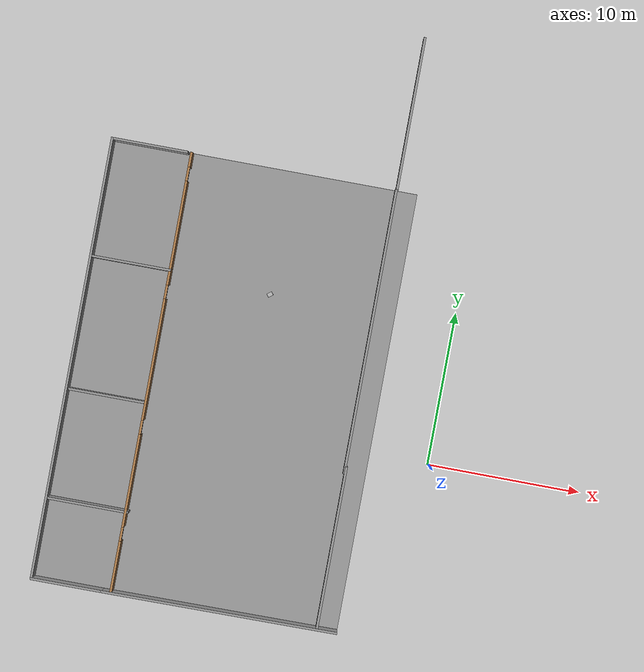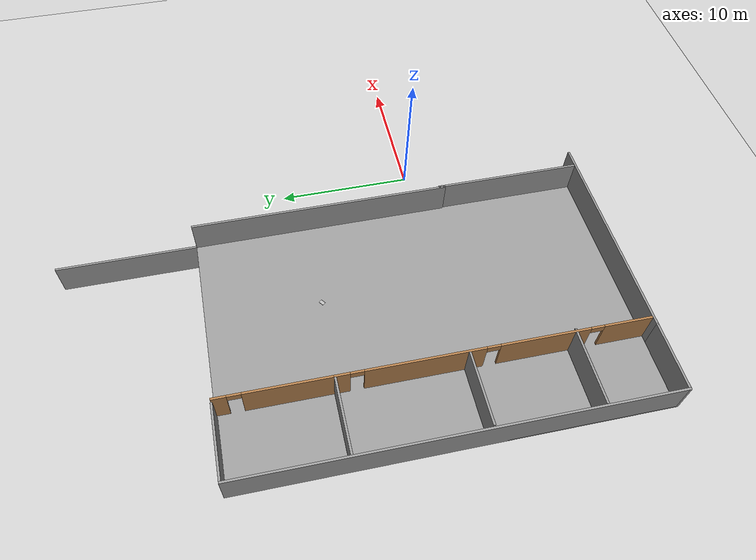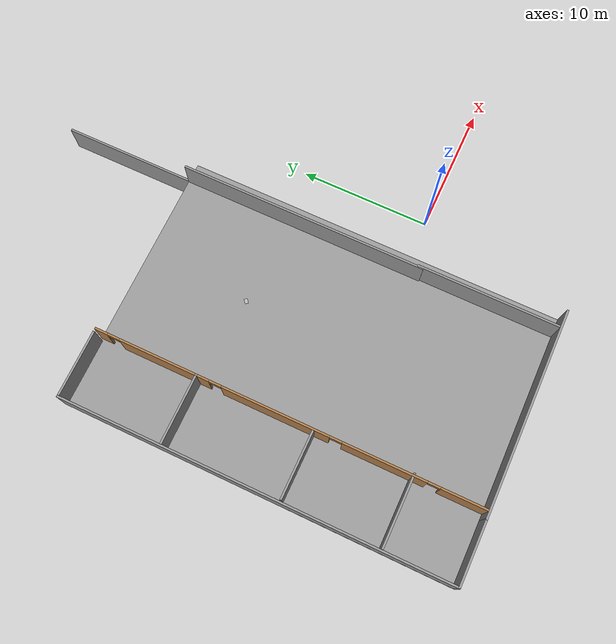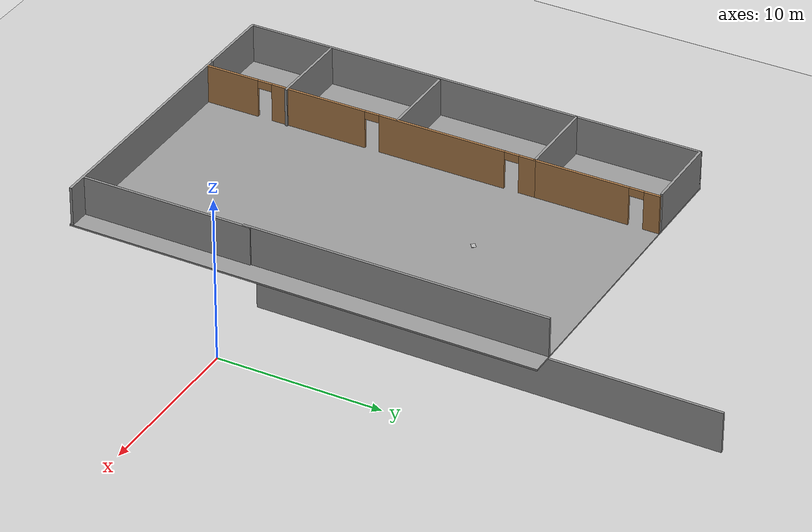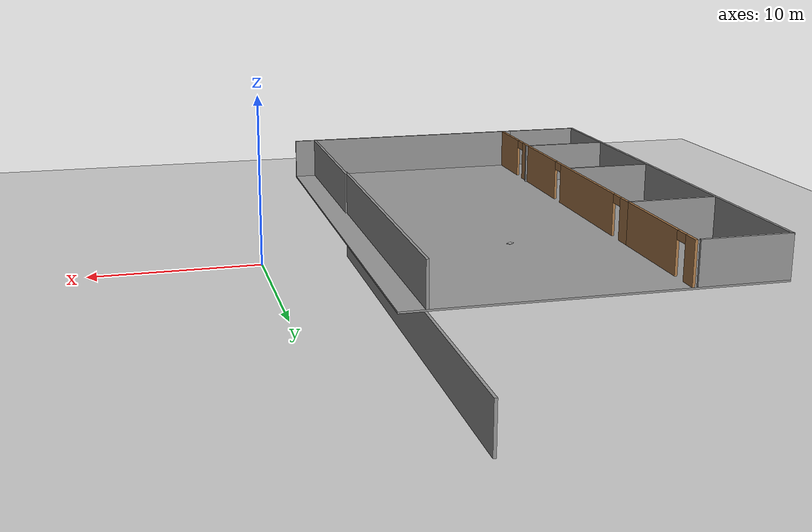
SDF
<sdf version="1.5">
 <world name="default">
  <model name="ground_plane">
   <static>1</static>
   <link name="link">
    <collision name="collision">
     <geometry><plane><normal>0 0 1</normal><size>100 100</size></plane></geometry>
     <surface>
      <contact><collide_bitmask>65535</collide_bitmask></contact>
      <friction><ode><mu>100</mu><mu2>50</mu2></ode></friction>
     </surface>
    </collision>
    <visual name="visual">
     <cast_shadows>0</cast_shadows>
     <geometry><plane><normal>0 0 1</normal><size>100 100</size></plane></geometry>
     <material>
      <script><uri>file://media/materials/scripts/gazebo.material</uri><name>Gazebo/Grey</name></script>
     </material>
    </visual>
   </link>
  </model>
  <model name="second_add">
   <pose>-13.8882 7.9927 0 0 -0 0</pose>
   <link name="Floor_1">
    <collision name="Floor_1_Collision">
     <geometry><box><size>19.9273 28.7505 0.1</size></box></geometry>
     <pose>0 0 0.05 0 -0 0</pose>
    </collision>
    <visual name="Floor_1_Visual">
     <pose>0 0 0.05 0 -0 0</pose>
     <geometry><box><size>19.9273 28.7505 0.1</size></box></geometry>
     <material>
      <script><uri>file://media/materials/scripts/gazebo.material</uri><name>Gazebo/Grey</name></script>
      <ambient>1 1 1 1</ambient>
     </material>
     <meta><layer>1</layer></meta>
    </visual>
    <pose>1e-06 -5.29758 2.5 0 -0 0</pose>
   </link>
   <link name="Wall_17">
    <collision name="Wall_17_Collision">
     <geometry><box><size>15.3272 0.15 2.5</size></box></geometry>
     <pose>0 0 1.25 0 -0 0</pose>
    </collision>
    <visual name="Wall_17_Visual">
     <pose>0 0 1.25 0 -0 0</pose>
     <geometry><box><size>15.3272 0.15 2.5</size></box></geometry>
     <material>
      <script><uri>file://media/materials/scripts/gazebo.material</uri><name>Gazebo/Grey</name></script>
      <ambient>1 1 1 1</ambient>
     </material>
     <meta><layer>1</layer></meta>
    </visual>
    <pose>2.29977 -19.55 2.5 0 -0 0.006236</pose>
   </link>
   <link name="Wall_18">
    <collision name="Wall_18_Collision">
     <geometry><box><size>10.5 0.15 2.5</size></box></geometry>
     <pose>0 0 1.25 0 -0 0</pose>
    </collision>
    <visual name="Wall_18_Visual">
     <pose>0 0 1.25 0 -0 0</pose>
     <geometry><box><size>10.5 0.15 2.5</size></box></geometry>
     <material>
      <script><uri>file://media/materials/scripts/gazebo.material</uri><name>Gazebo/Grey</name></script>
      <ambient>1 1 1 1</ambient>
     </material>
     <meta><layer>1</layer></meta>
    </visual>
    <pose>8.6382 -14.1777 2.5 0 -0 -1.5708</pose>
   </link>
   <link name="Wall_2">
    <collision name="Wall_2_Collision">
     <geometry><box><size>28.75 0.15 2.5</size></box></geometry>
     <pose>0 0 1.25 0 -0 0</pose>
    </collision>
    <visual name="Wall_2_Visual">
     <pose>0 0 1.25 0 -0 0</pose>
     <geometry><box><size>27.75 0.15 2.5</size></box></geometry>
     <material>
      <script><uri>file://media/materials/scripts/gazebo.material</uri><name>Gazebo/Grey</name></script>
      <ambient>1 1 1 1</ambient>
     </material>
     <meta><layer>0</layer></meta>
    </visual>
    <pose>8.6382 5.2973 0 0 -0 1.5708</pose>
   </link>
   <link name="Wall_20">
    <collision name="Wall_20_Collision">
     <geometry><box><size>4.75 0.15 2.5</size></box></geometry>
     <pose>0 0 1.25 0 -0 0</pose>
    </collision>
    <visual name="Wall_20_Visual">
     <pose>0 0 1.25 0 -0 0</pose>
     <geometry><box><size>4.75 0.15 2.5</size></box></geometry>
     <material>
      <script><uri>file://media/materials/scripts/gazebo.material</uri><name>Gazebo/Grey</name></script>
      <ambient>1 1 1 1</ambient>
     </material>
     <meta><layer>1</layer></meta>
    </visual>
    <pose>-7.58866 -19.5973 2.5 0 -0 3.14159</pose>
   </link>
   <link name="Wall_21">
    <collision name="Wall_21_Collision">
     <geometry><box><size>28.75 0.15 2.5</size></box></geometry>
     <pose>0 0 1.25 0 -0 0</pose>
    </collision>
    <visual name="Wall_21_Visual">
     <pose>0 0 1.25 0 -0 0</pose>
     <geometry><box><size>28.75 0.15 2.5</size></box></geometry>
     <material>
      <script><uri>file://media/materials/scripts/gazebo.material</uri><name>Gazebo/Grey</name></script>
      <ambient>1 1 1 1</ambient>
     </material>
     <meta><layer>1</layer></meta>
    </visual>
    <pose>-9.88866 -5.29734 2.5 0 -0 1.5708</pose>
   </link>
   <link name="Wall_22">
    <collision name="Wall_22_Collision">
     <geometry><box><size>5 0.15 2.5</size></box></geometry>
     <pose>0 0 1.25 0 -0 0</pose>
    </collision>
    <visual name="Wall_22_Visual">
     <pose>0 0 1.25 0 -0 0</pose>
     <geometry><box><size>5 0.15 2.5</size></box></geometry>
     <material>
      <script><uri>file://media/materials/scripts/gazebo.material</uri><name>Gazebo/Grey</name></script>
      <ambient>1 1 1 1</ambient>
     </material>
     <meta><layer>1</layer></meta>
    </visual>
    <pose>-7.46366 9.00266 2.5 0 -0 0</pose>
   </link>
   <link name="Wall_26">
    <collision name="Wall_26_Collision">
     <geometry><box><size>18.5 0.15 2.5</size></box></geometry>
     <pose>0 0 1.25 0 -0 0</pose>
    </collision>
    <visual name="Wall_26_Visual">
     <pose>0 0 1.25 0 -0 0</pose>
     <geometry><box><size>18.5 0.15 2.5</size></box></geometry>
     <material>
      <script><uri>file://media/materials/scripts/gazebo.material</uri><name>Gazebo/Grey</name></script>
      <ambient>1 1 1 1</ambient>
     </material>
     <meta><layer>1</layer></meta>
    </visual>
    <pose>8.56134 -0.172342 2.5 0 -0 -1.5708</pose>
   </link>
   <link name="Wall_31">
    <collision name="Wall_31_Collision">
     <geometry><box><size>5.25 0.15 2.5</size></box></geometry>
     <pose>0 0 1.25 0 -0 0</pose>
    </collision>
    <visual name="Wall_31_Visual">
     <pose>0 0 1.25 0 -0 0</pose>
     <geometry><box><size>5.25 0.15 2.5</size></box></geometry>
     <material>
      <script><uri>file://media/materials/scripts/gazebo.material</uri><name>Gazebo/Grey</name></script>
      <ambient>1 1 1 1</ambient>
     </material>
     <meta><layer>1</layer></meta>
    </visual>
    <pose>-7.28649 1.3805 2.5 0 -0 0</pose>
   </link>
   <link name="Wall_32">
    <pose>-4.73649 -9.0445 2.5 0 -0 -1.5708</pose>
    <visual name="Wall_32_Visual_0">
     <pose>-9.98504 0 1.25 0 -0 0</pose>
     <geometry><box><size>1.02992 0.15 2.5</size></box></geometry>
     <material><script><name>Gazebo/Wood</name><uri>__default__</uri></script></material>
     <meta><layer>1</layer></meta>
    </visual>
    <collision name="Wall_32_Collision_0">
     <geometry><box><size>1.02992 0.15 2.5</size></box></geometry>
     <pose>-9.98504 0 1.25 0 -0 0</pose>
    </collision>
    <visual name="Wall_32_Visual_1">
     <pose>-4.61896 0 1.25 0 -0 0</pose>
     <geometry><box><size>7.90224 0.15 2.5</size></box></geometry>
     <material><script><name>Gazebo/Wood</name><uri>__default__</uri></script></material>
     <meta><layer>1</layer></meta>
    </visual>
    <collision name="Wall_32_Collision_1">
     <geometry><box><size>7.90224 0.15 2.5</size></box></geometry>
     <pose>-4.61896 0 1.25 0 -0 0</pose>
    </collision>
    <visual name="Wall_32_Visual_2">
     <pose>3.25296 0 1.25 0 -0 0</pose>
     <geometry><box><size>6.0416 0.15 2.5</size></box></geometry>
     <material><script><name>Gazebo/Wood</name><uri>__default__</uri></script></material>
     <meta><layer>1</layer></meta>
    </visual>
    <collision name="Wall_32_Collision_2">
     <geometry><box><size>6.0416 0.15 2.5</size></box></geometry>
     <pose>3.25296 0 1.25 0 -0 0</pose>
    </collision>
    <visual name="Wall_32_Visual_3">
     <pose>8.83688 0 1.25 0 -0 0</pose>
     <geometry><box><size>3.32624 0.15 2.5</size></box></geometry>
     <material><script><name>Gazebo/Wood</name><uri>__default__</uri></script></material>
     <meta><layer>1</layer></meta>
    </visual>
    <collision name="Wall_32_Collision_3">
     <geometry><box><size>3.32624 0.15 2.5</size></box></geometry>
     <pose>8.83688 0 1.25 0 -0 0</pose>
    </collision>
    <visual name="Wall_32_Visual_4">
     <pose>-9.02008 0 2.25 0 -0 0</pose>
     <geometry><box><size>0.9 0.15 0.5</size></box></geometry>
     <material><script><name>Gazebo/Wood</name><uri>__default__</uri></script></material>
     <meta><layer>1</layer></meta>
    </visual>
    <collision name="Wall_32_Collision_4">
     <geometry><box><size>0.9 0.15 0.5</size></box></geometry>
     <pose>-9.02008 0 2.25 0 -0 0</pose>
    </collision>
    <visual name="Wall_32_Visual_5">
     <pose>-0.217841 0 2.25 0 -0 0</pose>
     <geometry><box><size>0.9 0.15 0.5</size></box></geometry>
     <material><script><name>Gazebo/Wood</name><uri>__default__</uri></script></material>
     <meta><layer>1</layer></meta>
    </visual>
    <collision name="Wall_32_Collision_5">
     <geometry><box><size>0.9 0.15 0.5</size></box></geometry>
     <pose>-0.217841 0 2.25 0 -0 0</pose>
    </collision>
    <visual name="Wall_32_Visual_6">
     <pose>6.72377 0 2.25 0 -0 0</pose>
     <geometry><box><size>0.9 0.15 0.5</size></box></geometry>
     <material><script><name>Gazebo/Wood</name><uri>__default__</uri></script></material>
     <meta><layer>1</layer></meta>
    </visual>
    <collision name="Wall_32_Collision_6">
     <geometry><box><size>0.9 0.15 0.5</size></box></geometry>
     <pose>6.72377 0 2.25 0 -0 0</pose>
    </collision>
   </link>
   <link name="Wall_34">
    <pose>-4.73649 5.1805 2.5 0 -0 1.5708</pose>
    <visual name="Wall_34_Visual_0">
     <pose>-0.939314 0 1.25 0 -0 0</pose>
     <geometry><box><size>5.87137 0.15 2.5</size></box></geometry>
     <material><script><name>Gazebo/Wood</name><uri>__default__</uri></script></material>
     <meta><layer>1</layer></meta>
    </visual>
    <collision name="Wall_34_Collision_0">
     <geometry><box><size>5.87137 0.15 2.5</size></box></geometry>
     <pose>-0.939314 0 1.25 0 -0 0</pose>
    </collision>
    <visual name="Wall_34_Visual_1">
     <pose>3.38569 0 1.25 0 -0 0</pose>
     <geometry><box><size>0.978629 0.15 2.5</size></box></geometry>
     <material><script><name>Gazebo/Wood</name><uri>__default__</uri></script></material>
     <meta><layer>1</layer></meta>
    </visual>
    <collision name="Wall_34_Collision_1">
     <geometry><box><size>0.978629 0.15 2.5</size></box></geometry>
     <pose>3.38569 0 1.25 0 -0 0</pose>
    </collision>
    <visual name="Wall_34_Visual_2">
     <pose>2.44637 0 2.25 0 -0 0</pose>
     <geometry><box><size>0.9 0.15 0.5</size></box></geometry>
     <material><script><name>Gazebo/Wood</name><uri>__default__</uri></script></material>
     <meta><layer>1</layer></meta>
    </visual>
    <collision name="Wall_34_Collision_2">
     <geometry><box><size>0.9 0.15 0.5</size></box></geometry>
     <pose>2.44637 0 2.25 0 -0 0</pose>
    </collision>
   </link>
   <link name="Wall_36">
    <collision name="Wall_36_Collision">
     <geometry><box><size>5 0.15 2.5</size></box></geometry>
     <pose>0 0 1.25 0 -0 0</pose>
    </collision>
    <visual name="Wall_36_Visual">
     <pose>0 0 1.25 0 -0 0</pose>
     <geometry><box><size>5 0.15 2.5</size></box></geometry>
     <material>
      <script><uri>file://media/materials/scripts/gazebo.material</uri><name>Gazebo/Grey</name></script>
      <ambient>1 1 1 1</ambient>
     </material>
     <meta><layer>1</layer></meta>
    </visual>
    <pose>-7.24547 -7.23192 2.5 0 -0 3.14159</pose>
   </link>
   <link name="Wall_38">
    <collision name="Wall_38_Collision">
     <geometry><box><size>5.25 0.15 2.5</size></box></geometry>
     <pose>0 0 1.25 0 -0 0</pose>
    </collision>
    <visual name="Wall_38_Visual">
     <pose>0 0 1.25 0 -0 0</pose>
     <geometry><box><size>5.25 0.15 2.5</size></box></geometry>
     <material>
      <script><uri>file://media/materials/scripts/gazebo.material</uri><name>Gazebo/Grey</name></script>
      <ambient>1 1 1 1</ambient>
     </material>
     <meta><layer>1</layer></meta>
    </visual>
    <pose>-7.18118 -14.3301 2.5 0 -0 3.14159</pose>
   </link>
   <static>1</static>
  </model>
  <model name="newspaper_2">
   <link name="link_0">
    <visual name="visual">
     <meta><layer>3</layer></meta>
     <geometry><box><size>0.35 0.25 0.02</size></box></geometry>
     <material>
      <script>
       <uri>model://newspaper_2/materials/scripts</uri>
       <uri>model://newspaper_2/materials/textures</uri>
       <name>newspaper_2</name>
      </script>
     </material>
    </visual>
    <collision name="collision"><geometry><box><size>0.35 0.25 0.02</size></box></geometry></collision>
   </link>
   <static>1</static>
   <pose>-12.0862 9.01925 3.03342 0 -0 0.680542</pose>
  </model>
  <model name="tea_box">
   <link name="link">
    <pose>0 0 0.075 0 -0 0</pose>
    <visual name="visual">
     <geometry><box><size>0.1 0.1 0.15</size></box></geometry>
     <material>
      <script>
       <uri>model://tea_box/materials/scripts</uri>
       <uri>model://tea_box/materials/textures</uri>
       <name>tea_pat</name>
      </script>
     </material>
    </visual>
    <collision name="collision"><geometry><box><size>0.1 0.1 0.15</size></box></geometry></collision>
   </link>
   <static>1</static>
   <pose>-17.3071 4.43485 0.777018 0 -0 0</pose>
  </model>
  <model name="tea_box_0">
   <link name="link">
    <pose>0 0 0.075 0 -0 0</pose>
    <visual name="visual">
     <geometry><box><size>0.1 0.1 0.15</size></box></geometry>
     <material>
      <script>
       <uri>model://tea_box/materials/scripts</uri>
       <uri>model://tea_box/materials/textures</uri>
       <name>tea_pat</name>
      </script>
     </material>
    </visual>
    <collision name="collision"><geometry><box><size>0.1 0.1 0.15</size></box></geometry></collision>
   </link>
   <static>1</static>
   <pose>-17.1641 4.53186 0.778016 0 -0 0</pose>
  </model>
 </world>
</sdf>
